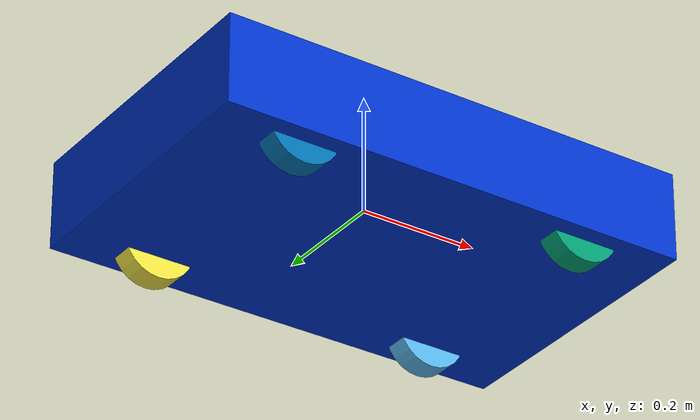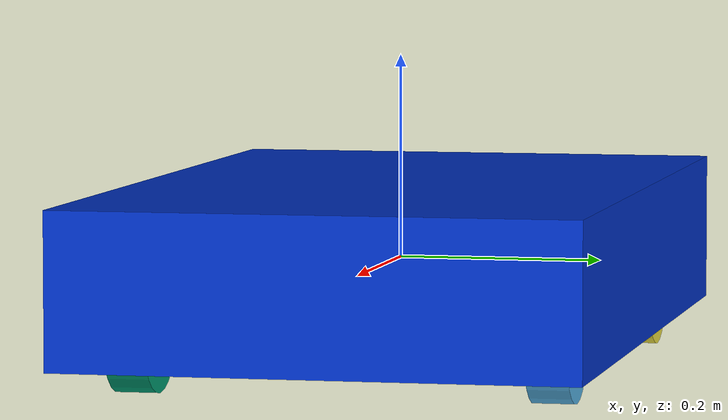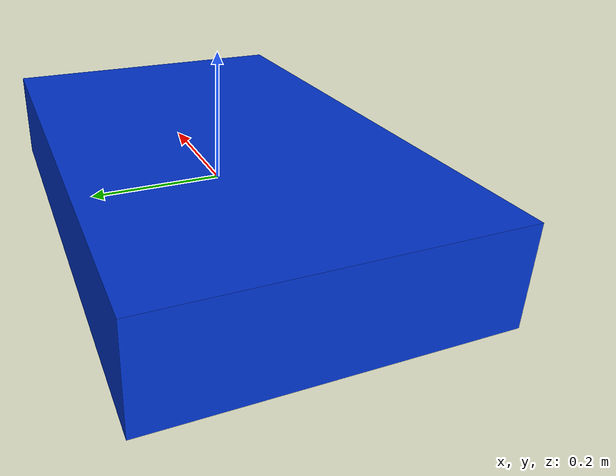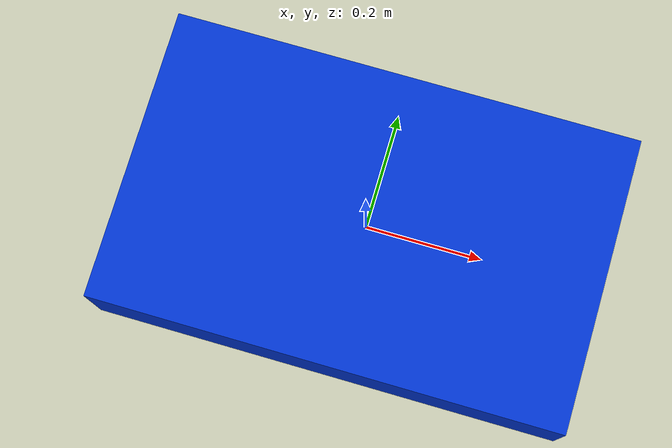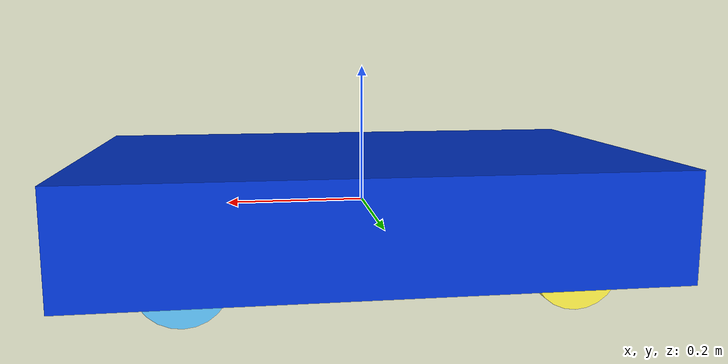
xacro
<?xml version="1.0"?>
<!-- Simple car model: base_link with four wheels. Wheels are connected via continuous joints so joint_state_publisher can animate them. -->
<robot name="simple_car" xmlns:xacro="http://www.ros.org/wiki/xacro">

  <!-- macro: simple_cylinder_link(name, length, radius, mass) -->
  <xacro:macro name="simple_cylinder_link" params="name length radius mass">
    <link name="${name}">
      <inertial>
        <origin xyz="0 0 ${length/2}" rpy="0 0 0"/>
        <mass value="${mass}"/>
        <inertia ixx="0.1" ixy="0.0" ixz="0.0" iyy="0.1" iyz="0.0" izz="0.1"/>
      </inertial>
      <visual>
        <geometry>
          <cylinder length="${length}" radius="${radius}"/>
        </geometry>
        <origin xyz="0 0 ${length/2}" rpy="0 0 0"/>
      </visual>
      <collision>
        <geometry>
          <cylinder length="${length}" radius="${radius}"/>
        </geometry>
        <origin xyz="0 0 ${length/2}" rpy="0 0 0"/>
      </collision>
    </link>
  </xacro:macro>

  <!-- Base chassis -->
  <link name="base_link">
    <inertial>
      <origin xyz="0 0 0" rpy="0 0 0"/>
      <mass value="10.0"/>
      <inertia ixx="1.0" ixy="0.0" ixz="0.0" iyy="1.0" iyz="0.0" izz="1.0"/>
    </inertial>
    <visual>
      <geometry>
        <box size="0.8 0.5 0.15"/>
      </geometry>
      <material name="blue">
        <color rgba="0 0.2 0.8 1"/>
      </material>
    </visual>
    <collision>
      <geometry>
        <box size="0.8 0.5 0.15"/>
      </geometry>
    </collision>
  </link>

  <!-- wheel macro: creates wheel link and a continuous joint to parent -->
  <xacro:macro name="wheel" params="name parent xyz rpy radius width">
    <link name="${name}">
      <visual>
        <geometry>
          <cylinder length="${width}" radius="${radius}"/>
        </geometry>
        <!-- rotate cylinder so axis aligns with wheel axis -->
        <origin xyz="0 0 0" rpy="1.5708 0 0"/>
      </visual>
      <collision>
        <geometry>
          <cylinder length="${width}" radius="${radius}"/>
        </geometry>
        <origin xyz="0 0 0" rpy="1.5708 0 0"/>
      </collision>
      <inertial>
        <mass value="1.0"/>
        <inertia ixx="0.01" ixy="0.0" ixz="0.0" iyy="0.01" iyz="0.0" izz="0.01"/>
      </inertial>
    </link>

    <!-- continuous joint so joint_state_publisher can move it -->
    <joint name="${name}_joint" type="continuous">
      <parent link="${parent}"/>
      <child link="${name}"/>
      <origin xyz="${xyz}" rpy="${rpy}"/>
      <axis xyz="0 1 0"/>
    </joint>
  </xacro:macro>

  <!-- instantiate four wheels -->
  <!-- front_left -->
  <xacro:wheel name="front_left_wheel" parent="base_link" xyz="0.25 0.20 -0.05" rpy="0 0 0" radius="0.06" width="0.04"/>
  <!-- front_right -->
  <xacro:wheel name="front_right_wheel" parent="base_link" xyz="0.25 -0.20 -0.05" rpy="0 0 0" radius="0.06" width="0.04"/>
  <!-- rear_left -->
  <xacro:wheel name="rear_left_wheel" parent="base_link" xyz="-0.25 0.20 -0.05" rpy="0 0 0" radius="0.06" width="0.04"/>
  <!-- rear_right -->
  <xacro:wheel name="rear_right_wheel" parent="base_link" xyz="-0.25 -0.20 -0.05" rpy="0 0 0" radius="0.06" width="0.04"/>

</robot>
